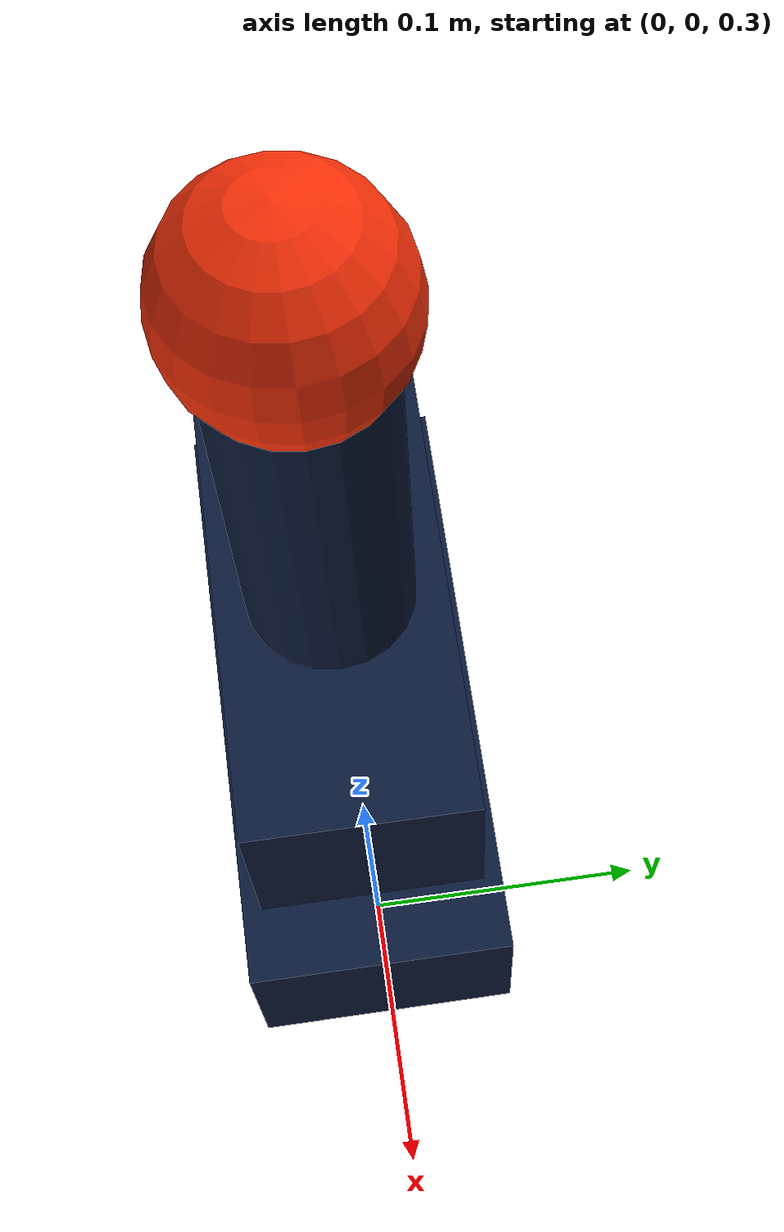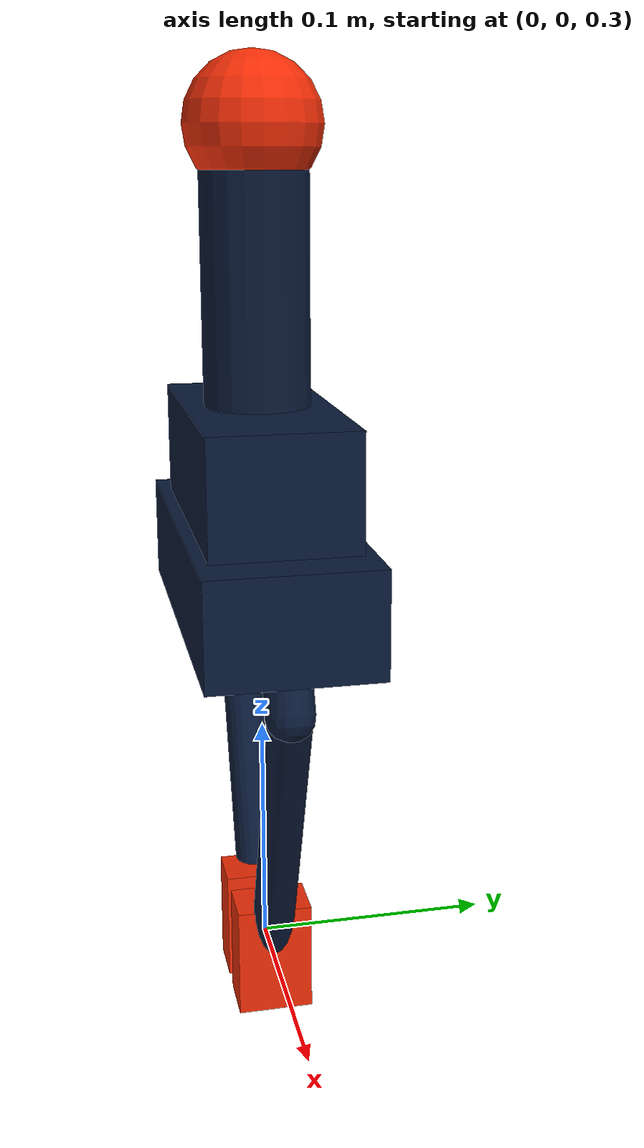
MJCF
<mujoco model="claw">
  <include file="claw_materials.xml"/>

  <!-- A visually distinctive two-prong claw with a widened base stance. -->
  <worldbody>
    <body name="__NAME__" mocap="true" pos="0 0 0.3">
      <!-- Hinges widened from x = ±0.048 to x = ±0.068 -->
      <body name="__NAME___finger_l" pos="-0.068 0 0.13">
        <joint name="__NAME___finger_l_hinge" type="hinge" axis="0 1 0"
               range="-0.8 0.8" damping="0.2"/>
        <geom name="__NAME___finger_l_geom" type="capsule"
              fromto="0 0 0 0.052 0 -0.13" size="0.009"
              material="claw_metal" friction="4.0 0.02 0.002" condim="4"
              solref="0.01 1" contype="1" conaffinity="1"/>
        <geom name="__NAME___tip_l" type="capsule"
              fromto="0 0 0 0.013 0 0.03" size="0.010"
              material="claw_metal" friction="4.0 0.02 0.002" condim="4"
              solref="0.01 1" contype="1" conaffinity="1"/>
        <geom name="__NAME___pad_l" type="box" pos="0.052 0 -0.13" euler="0 -0.3 0"
              size="0.011 0.016 0.024"
              material="claw_pad" friction="6.0 0.04 0.002" condim="4"
              solref="0.004 1" margin="0.0005" contype="1" conaffinity="1"/>
      </body>
      <body name="__NAME___finger_r" pos="0.068 0 0.13">
        <joint name="__NAME___finger_r_hinge" type="hinge" axis="0 1 0"
               range="-0.8 0.8" damping="0.2"/>
        <geom name="__NAME___finger_r_geom" type="capsule"
              fromto="0 0 0 -0.052 0 -0.13" size="0.009"
              material="claw_metal" friction="4.0 0.02 0.002" condim="4"
              solref="0.01 1" contype="1" conaffinity="1"/>
        <geom name="__NAME___tip_r" type="capsule"
              fromto="0 0 0 -0.013 0 0.03" size="0.010"
              material="claw_metal" friction="4.0 0.02 0.002" condim="4"
              solref="0.01 1" contype="1" conaffinity="1"/>
        <geom name="__NAME___pad_r" type="box" pos="-0.052 0 -0.13" euler="0 0.3 0"
              size="0.011 0.016 0.024"
              material="claw_pad" friction="6.0 0.04 0.002" condim="4"
              solref="0.004 1" margin="0.0005" contype="1" conaffinity="1"/>
      </body>

      <!-- Palm and housing half-widths widened to enclose the new hinge positions -->
      <geom name="__NAME___palm" type="box" pos="0 0 0.17"
            size="0.085 0.035 0.022" material="claw_metal"
            contype="1" conaffinity="1"/>
      <geom name="__NAME___housing" type="box" pos="0 0 0.215"
            size="0.065 0.030 0.025" material="claw_metal"
            contype="1" conaffinity="1"/>
      <geom name="__NAME___wrist" type="capsule"
            fromto="0 0 0.23 0 0 0.34" size="0.022"
            material="claw_metal" contype="1" conaffinity="1"/>
      <geom name="__NAME___wrist_cap" type="sphere" pos="0 0 0.35"
            size="0.028" material="claw_pad" contype="1" conaffinity="1"/>
    </body>
  </worldbody>

  <actuator>
    <position name="__NAME___finger_l_motor" joint="__NAME___finger_l_hinge"
              kp="200" ctrlrange="-0.8 0.8" forcerange="-25 25"/>
    <position name="__NAME___finger_r_motor" joint="__NAME___finger_r_hinge"
              kp="200" ctrlrange="-0.8 0.8" forcerange="-25 25"/>
  </actuator>
</mujoco>

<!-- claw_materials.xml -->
<mujoco model="claw_materials">
  <asset>
    <material name="claw_metal" rgba="0.04 0.10 0.22 1" specular="0.8" shininess="0.7" reflectance="0.2"/>
    <material name="claw_pad" rgba="0.95 0.18 0.03 1" specular="0.25" shininess="0.25"/>
  </asset>
</mujoco>
